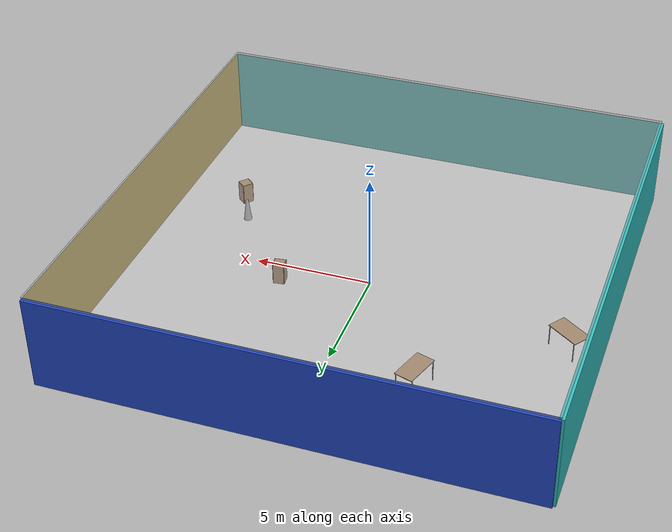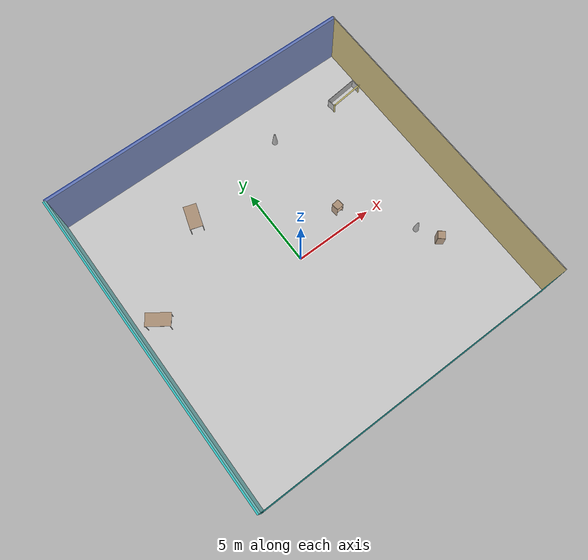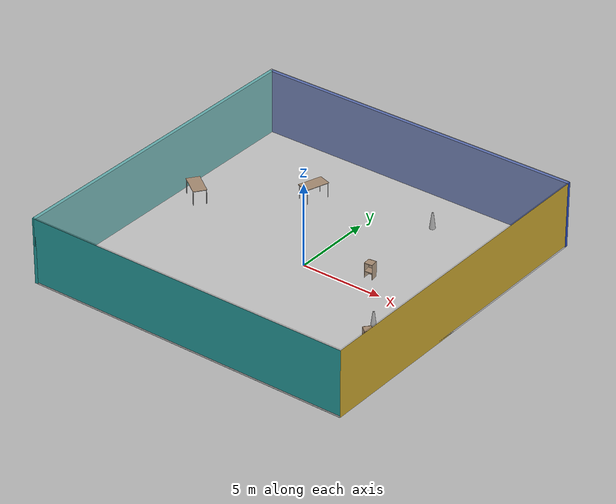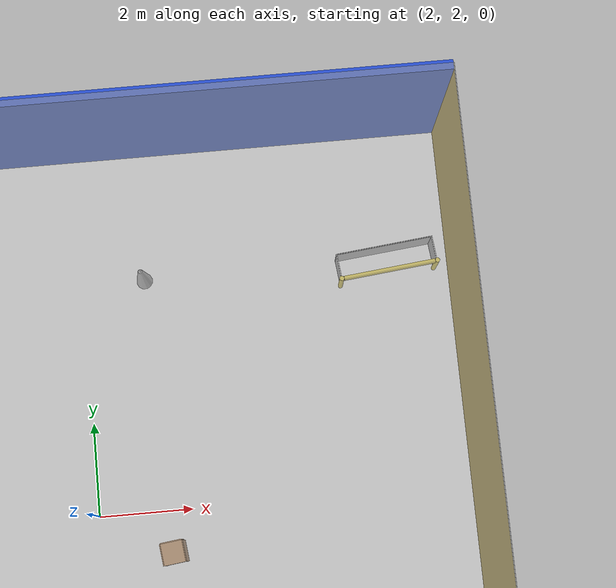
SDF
<sdf version="1.4">
 <world name="default">
  <physics type="ode">
   <max_step_size>0.001</max_step_size>
   <real_time_factor>1</real_time_factor>
   <real_time_update_rate>1000</real_time_update_rate>
   <gravity>0 0 -9.8</gravity>
  </physics>
  <scene><ambient>0.4 0.4 0.4 1</ambient><background>0.7 0.7 0.7 1</background><shadows>1</shadows></scene>
  <model name="Surrounding">
   <static>1</static>
   <link name="Ceiling">
    <collision name="Ceiling_Collision"><geometry><box><size>20 20 0.1</size></box></geometry></collision>
    <visual name="Ceiling_Visual">
     <geometry><box><size>20 20 0.1</size></box></geometry>
     <material>
      <script><uri>file://media/materials/scripts/gazebo.material</uri><name>Gazebo/GreyTransparent</name></script>
     </material>
    </visual>
    <pose>0 0 4.05 0 0 0</pose>
   </link>
   <link name="Wall_South">
    <collision name="Wall_South_Collision">
     <geometry><box><size>20 0 4</size></box></geometry>
     <pose>0 0 2 0 -0 0</pose>
    </collision>
    <visual name="Wall_South_Visual">
     <pose>0 0 2 0 -0 0</pose>
     <geometry><box><size>20 0 4</size></box></geometry>
     <material>
      <script>
       <uri>file://media/materials/scripts/gazebo.material</uri>
       <name>Gazebo/TurquoiseGlowOutline</name>
      </script>
     </material>
    </visual>
    <velocity_decay><linear>0</linear><angular>0</angular></velocity_decay>
    <pose>0 -10 0 0 -0 0</pose>
   </link>
   <link name="Wall_East">
    <collision name="Wall_21_Collision">
     <geometry><box><size>20 0 4</size></box></geometry>
     <pose>0 0 2 0 -0 0</pose>
    </collision>
    <visual name="Wall_21_Visual">
     <pose>0 0 2 0 -0 0</pose>
     <geometry><box><size>20 0 4</size></box></geometry>
     <material>
      <script><uri>file://media/materials/scripts/gazebo.material</uri><name>Gazebo/Gold</name></script>
     </material>
    </visual>
    <velocity_decay><linear>0</linear><angular>0</angular></velocity_decay>
    <pose>10 0 0 0 -0 1.5708</pose>
   </link>
   <link name="Wall_North">
    <collision name="Wall_22_Collision">
     <geometry><box><size>20 0.2 4</size></box></geometry>
     <pose>0 0 2 0 -0 0</pose>
    </collision>
    <visual name="Wall_22_Visual">
     <pose>0 0 2 0 -0 0</pose>
     <geometry><box><size>20 0.2 4</size></box></geometry>
     <material>
      <script><uri>file://media/materials/scripts/gazebo.material</uri><name>Gazebo/BlueGlow</name></script>
     </material>
    </visual>
    <velocity_decay><linear>0</linear><angular>0</angular></velocity_decay>
    <pose>0 10 0 0 -0 0</pose>
   </link>
   <link name="Wall_West">
    <collision name="Wall_23_Collision">
     <geometry><box><size>20 0.2 4</size></box></geometry>
     <pose>0 0 2 0 -0 0</pose>
    </collision>
    <visual name="Wall_23_Visual">
     <pose>0 0 2 0 -0 0</pose>
     <geometry><box><size>20 0.2 4</size></box></geometry>
     <material>
      <script><uri>file://media/materials/scripts/gazebo.material</uri><name>Gazebo/Turquoise</name></script>
     </material>
    </visual>
    <velocity_decay><linear>0</linear><angular>0</angular></velocity_decay>
    <pose>-10 0 0 0 0 -1.5708</pose>
   </link>
   <link name="Ground_link">
    <collision name="collision">
     <pose>0 0 .05 0 -0 0</pose>
     <geometry><box><size>20 20 0.1</size></box></geometry>
    </collision>
    <visual name="visual">
     <pose>0 0 .05 0 -0 0</pose>
     <geometry><box><size>20 20 0.1</size></box></geometry>
     <material>
      <script><uri>file://media/materials/scripts/gazebo.material</uri><name>Gazebo/White</name></script>
     </material>
    </visual>
   </link>
   <static>1</static>
  </model>
  <spherical_coordinates>
   <surface_model>EARTH_WGS84</surface_model>
   <latitude_deg>0</latitude_deg>
   <longitude_deg>0</longitude_deg>
   <elevation>0</elevation>
   <heading_deg>0</heading_deg>
  </spherical_coordinates>
  <light name="lightball_0" type="diffuse">
   <diffuse>0.8 0.8 0.8 1</diffuse>
   <specular>0.2 0.2 0.2 1</specular>
   <attenuation>
    <range>100</range>
    <constant>0.7</constant>
    <linear>0.01</linear>
    <quadratic>0.001</quadratic>
   </attenuation>
   <direction>-0.5 0.1 -0.9</direction>
   <pose>1.25530496725 -2.75509351555 0.708818237277 0 0 0</pose>
  </light>
  <light name="lightball_1" type="diffuse">
   <diffuse>0.8 0.8 0.8 1</diffuse>
   <specular>0.2 0.2 0.2 1</specular>
   <attenuation>
    <range>100</range>
    <constant>0.7</constant>
    <linear>0.01</linear>
    <quadratic>0.001</quadratic>
   </attenuation>
   <direction>-0.5 0.1 -0.9</direction>
   <pose>3.04227297356 2.8008380953 2.23668799889 0 0 0</pose>
  </light>
  <light name="lightball_2" type="diffuse">
   <diffuse>0.8 0.8 0.8 1</diffuse>
   <specular>0.2 0.2 0.2 1</specular>
   <attenuation>
    <range>100</range>
    <constant>0.7</constant>
    <linear>0.01</linear>
    <quadratic>0.001</quadratic>
   </attenuation>
   <direction>-0.5 0.1 -0.9</direction>
   <pose>2.37628475764 2.19714027874 2.12235755466 0 0 0</pose>
  </light>
  <light name="lightball_3" type="diffuse">
   <diffuse>0.8 0.8 0.8 1</diffuse>
   <specular>0.2 0.2 0.2 1</specular>
   <attenuation>
    <range>100</range>
    <constant>0.7</constant>
    <linear>0.01</linear>
    <quadratic>0.001</quadratic>
   </attenuation>
   <direction>-0.5 0.1 -0.9</direction>
   <pose>-7.39266547396 0.498391105823 1.97719591928 0 0 0</pose>
  </light>
  <include><uri>model://table</uri><pose>-8.69438296561 1.67665290134 0 0 0 2.5234262444</pose></include>
  <include><uri>model://table</uri><pose>-3.66089564364 5.63265076736 0 0 0 1.2613865516</pose></include>
  <include><uri>model://cabinet</uri><pose>3.57646462569 1.10271775403 0 0 0 1.69698118439</pose></include>
  <include>
   <uri>model://construction_cone</uri>
   <pose>3.31910774702 7.04926064693 0 0 0 2.33696717021</pose>
  </include>
  <include><uri>model://cabinet</uri><pose>7.23475816257 -4.02355091337 0 0 0 2.43160927663</pose></include>
  <include>
   <uri>model://construction_cone</uri>
   <pose>6.58778346603 -2.66031912638 0 0 0 1.7273928351</pose>
  </include>
  <include>
   <uri>model://robocup_3Dsim_goal</uri>
   <pose>8.65254549733 6.67516420982 0 0 0 1.67751331696</pose>
  </include>
 </world>
</sdf>

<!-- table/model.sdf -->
<sdf version="1.5">
  <model name="table">
    <static>true</static>
    <link name="link">
      <collision name="surface">
        <pose>0 0 1.0 0 0 0</pose>
        <geometry>
          <box>
            <size>1.5 0.8 0.03</size>
          </box>
        </geometry>
        <surface>
          <friction>
            <ode>
              <mu>0.6</mu>
              <mu2>0.6</mu2>
            </ode>
          </friction>
        </surface>
      </collision>
      <visual name="visual1">
        <pose>0 0 1.0 0 0 0</pose>
        <geometry>
          <box>
            <size>1.5 0.8 0.03</size>
          </box>
        </geometry>
        <material>
          <script>
            <uri>model://media/materials/scripts/gazebo.material</uri>
            <name>Gazebo/Wood</name>
          </script>
        </material>
      </visual>
      <collision name="front_left_leg">
        <pose>0.68 0.38 0.5 0 0 0</pose>
        <geometry>
          <cylinder>
            <radius>0.02</radius>
            <length>1.0</length>
          </cylinder>
        </geometry>
      </collision>
      <visual name="front_left_leg">
        <pose>0.68 0.38 0.5 0 0 0</pose>
        <geometry>
          <cylinder>
            <radius>0.02</radius>
            <length>1.0</length>
          </cylinder>
        </geometry>
        <material>
          <script>
            <uri>model://media/materials/scripts/gazebo.material</uri>
            <name>Gazebo/Grey</name>
          </script>
        </material>
      </visual>
      <collision name="front_right_leg">
        <pose>0.68 -0.38 0.5 0 0 0</pose>
        <geometry>
          <cylinder>
            <radius>0.02</radius>
            <length>1.0</length>
          </cylinder>
        </geometry>
      </collision>
      <visual name="front_right_leg">
        <pose>0.68 -0.38 0.5 0 0 0</pose>
        <geometry>
          <cylinder>
            <radius>0.02</radius>
            <length>1.0</length>
          </cylinder>
        </geometry>
        <material>
          <script>
            <uri>model://media/materials/scripts/gazebo.material</uri>
            <name>Gazebo/Grey</name>
          </script>
        </material>
      </visual>
      <collision name="back_right_leg">
        <pose>-0.68 -0.38 0.5 0 0 0</pose>
        <geometry>
          <cylinder>
            <radius>0.02</radius>
            <length>1.0</length>
          </cylinder>
        </geometry>
      </collision>
      <visual name="back_right_leg">
        <pose>-0.68 -0.38 0.5 0 0 0</pose>
        <geometry>
          <cylinder>
            <radius>0.02</radius>
            <length>1.0</length>
          </cylinder>
        </geometry>
        <material>
          <script>
            <uri>model://media/materials/scripts/gazebo.material</uri>
            <name>Gazebo/Grey</name>
          </script>
        </material>
      </visual>
      <collision name="back_left_leg">
        <pose>-0.68 0.38 0.5 0 0 0</pose>
        <geometry>
          <cylinder>
            <radius>0.02</radius>
            <length>1.0</length>
          </cylinder>
        </geometry>
      </collision>
      <visual name="back_left_leg">
        <pose>-0.68 0.38 0.5 0 0 0</pose>
        <geometry>
          <cylinder>
            <radius>0.02</radius>
            <length>1.0</length>
          </cylinder>
        </geometry>
        <material>
          <script>
            <uri>model://media/materials/scripts/gazebo.material</uri>
            <name>Gazebo/Grey</name>
          </script>
        </material>
      </visual>
    </link>
  </model>
</sdf>

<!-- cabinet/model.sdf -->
<sdf version="1.5">
  <model name="cabinet">
    <static>true</static>
    <link name="cabinet_bottom_plate">
      <inertial>
        <pose>0 0 -1 0 0 0</pose>
        <inertia>
          <ixx>2.050000</ixx>
          <ixy>0</ixy>
          <ixz>0</ixz>
          <iyy>2.050000</iyy>
          <iyz>0</iyz>
          <izz>2.050000</izz>
        </inertia>
        <mass>25.000000</mass>
      </inertial>
      <collision name="cabinet_bottom_plate_geom">
        <pose>0 0 0.010000 0 0 0</pose>
        <geometry>
          <box>
            <size>0.450000 0.450000 0.020000</size>
          </box>
        </geometry>
      </collision>
      <visual name="cabinet_bottom_plate_geom_visual">
        <pose>0 0 0.010000 0 0 0</pose>
        <geometry>
          <box>
            <size>0.450000 0.450000 0.020000</size>
          </box>
        </geometry>
        <material>
          <script>
            <uri>model://media/materials/scripts/gazebo.material</uri>
            <name>Gazebo/Wood</name>
          </script>
        </material>
      </visual>
      <collision name="cabinet_bottom_plate_geom_cabinet_back_plate">
        <pose>0.235000 0 0.510000 0 0 0</pose>
        <geometry>
          <box>
            <size>0.020000 0.450000 1.020000</size>
          </box>
        </geometry>
      </collision>
      <visual name="cabinet_bottom_plate_geom_cabinet_back_plate_visual">
        <pose>0.235000 0 0.510000 0 0 0</pose>
        <geometry>
          <box>
            <size>0.020000 0.450000 1.020000</size>
          </box>
        </geometry>
        <material>
          <script>
            <uri>model://media/materials/scripts/gazebo.material</uri>
            <name>Gazebo/Wood</name>
          </script>
        </material>
      </visual>
      <collision name="cabinet_bottom_plate_geom_cabinet_left_plate">
        <pose>0 0.235000 0.510000 0 0 0</pose>
        <geometry>
          <box>
            <size>0.450000 0.020000 1.020000</size>
          </box>
        </geometry>
      </collision>
      <visual name="cabinet_bottom_plate_geom_cabinet_left_plate_visual">
        <pose>0 0.235000 0.510000 0 0 0</pose>
        <geometry>
          <box>
            <size>0.450000 0.020000 1.020000</size>
          </box>
        </geometry>
        <material>
          <script>
            <uri>model://media/materials/scripts/gazebo.material</uri>
            <name>Gazebo/Wood</name>
          </script>
        </material>
      </visual>
      <collision name="cabinet_bottom_plate_geom_cabinet_middle_plate">
        <pose>0 0 0.510000 0 0 0</pose>
        <geometry>
          <box>
            <size>0.450000 0.450000 0.020000</size>
          </box>
        </geometry>
      </collision>
      <visual name="cabinet_bottom_plate_geom_cabinet_middle_plate_visual">
        <pose>0 0 0.510000 0 0 0</pose>
        <geometry>
          <box>
            <size>0.450000 0.450000 0.020000</size>
          </box>
        </geometry>
        <material>
          <script>
            <uri>model://media/materials/scripts/gazebo.material</uri>
            <name>Gazebo/Wood</name>
          </script>
        </material>
      </visual>
      <collision name="cabinet_bottom_plate_geom_cabinet_right_plate">
        <pose>0 -0.235000 0.510000 0 0 0</pose>
        <geometry>
          <box>
            <size>0.450000 0.020000 1.020000</size>
          </box>
        </geometry>
      </collision>
      <visual name="cabinet_bottom_plate_geom_cabinet_right_plate_visual">
        <pose>0 -0.235000 0.510000 0 0 0</pose>
        <geometry>
          <box>
            <size>0.450000 0.020000 1.020000</size>
          </box>
        </geometry>
        <material>
          <script>
            <uri>model://media/materials/scripts/gazebo.material</uri>
            <name>Gazebo/Wood</name>
          </script>
        </material>
      </visual>
      <collision name="cabinet_bottom_plate_geom_cabinet_top_plate">
        <pose>0 0 1.010000 0 0 0</pose>
        <geometry>
          <box>
            <size>0.450000 0.450000 0.020000</size>
          </box>
        </geometry>
      </collision>
      <visual name="cabinet_bottom_plate_geom_cabinet_top_plate_visual">
        <pose>0 0 1.010000 0 0 0</pose>
        <geometry>
          <box>
            <size>0.450000 0.450000 0.020000</size>
          </box>
        </geometry>
        <material>
          <script>
            <uri>model://media/materials/scripts/gazebo.material</uri>
            <name>Gazebo/Wood</name>
          </script>
        </material>
      </visual>
    </link>
  </model>
</sdf>

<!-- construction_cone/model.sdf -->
<sdf version="1.5">
  <model name="Construction Cone">
    <link name="link">
      <collision name="collision">
        <geometry>
          <mesh>
            <scale>10 10 10</scale>
            <uri>file://isr-testbed/construction_cone/meshes/construction_cone.dae</uri>
          </mesh>
        </geometry>
      </collision>
      <visual name="visual">
        <geometry>
          <mesh>
            <scale>10 10 10</scale>
            <uri>file://isr-testbed/construction_cone/meshes/construction_cone.dae</uri>
          </mesh>
        </geometry>
      </visual>
    </link>
  </model>
</sdf>

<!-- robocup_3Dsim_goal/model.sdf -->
<sdf version="1.5">
  <model name="robocup_3d_goal">
    <static>true</static>
    <link name="left_post">
      <pose>0 1.05 0.45 0 0 0</pose>
      <collision name="collision">
        <geometry>
          <cylinder>
            <radius>0.05</radius>
            <length>0.9</length>
          </cylinder>
        </geometry>
      </collision>
      <visual name="visual">
        <geometry>
          <cylinder>
            <radius>0.05</radius>
            <length>0.9</length>
          </cylinder>
        </geometry>
        <material>
          <script>
            <uri>file://media/materials/scripts/gazebo.material</uri>
            <name>Gazebo/ZincYellow</name>
          </script>
        </material>
      </visual>
    </link>
    <link name="left_support_horiz_lower">
      <pose>0.30 1.05 0.01 0 0 0</pose>
      <collision name="collision">
        <geometry>
          <box>
            <size>0.50 0.02 0.02</size>
          </box>
        </geometry>
      </collision>
      <visual name="visual">
        <geometry>
          <box>
            <size>0.50 0.02 0.02</size>
          </box>
        </geometry>
        <material>
          <script>
            <uri>file://media/materials/scripts/gazebo.material</uri>
            <name>Gazebo/White</name>
          </script>
        </material>
      </visual>
    </link>
    <link name="left_support_horiz_upper">
      <pose>0.30 1.05 0.79 0 0 0</pose>
      <collision name="collision">
        <geometry>
          <box>
            <size>0.50 0.02 0.02</size>
          </box>
        </geometry>
      </collision>
      <visual name="visual">
        <geometry>
          <box>
            <size>0.50 0.02 0.02</size>
          </box>
        </geometry>
        <material>
          <script>
            <uri>file://media/materials/scripts/gazebo.material</uri>
            <name>Gazebo/White</name>
          </script>
        </material>
      </visual>
    </link>
    <link name="left_support_vertical">
      <pose>0.56 1.05 0.4 0 1.5708 0</pose>
      <collision name="collision">
        <geometry>
          <box>
            <size>0.80 0.02 0.02</size>
          </box>
        </geometry>
      </collision>
      <visual name="visual">
        <geometry>
          <box>
            <size>0.80 0.02 0.02</size>
          </box>
        </geometry>
        <material>
          <script>
            <uri>file://media/materials/scripts/gazebo.material</uri>
            <name>Gazebo/White</name>
          </script>
        </material>
      </visual>
    </link>
    <link name="right_support_horiz_lower">
      <pose>0.30 -1.05 0.01 0 0 0</pose>
      <collision name="collision">
        <geometry>
          <box>
            <size>0.50 0.02 0.02</size>
          </box>
        </geometry>
      </collision>
      <visual name="visual">
        <geometry>
          <box>
            <size>0.50 0.02 0.02</size>
          </box>
        </geometry>
        <material>
          <script>
            <uri>file://media/materials/scripts/gazebo.material</uri>
            <name>Gazebo/White</name>
          </script>
        </material>
      </visual>
    </link>
    <link name="right_support_horiz_upper">
      <pose>0.30 -1.05 0.79 0 0 0</pose>
      <collision name="collision">
        <geometry>
          <box>
            <size>0.50 0.02 0.02</size>
          </box>
        </geometry>
      </collision>
      <visual name="visual">
        <geometry>
          <box>
            <size>0.50 0.02 0.02</size>
          </box>
        </geometry>
        <material>
          <script>
            <uri>file://media/materials/scripts/gazebo.material</uri>
            <name>Gazebo/White</name>
          </script>
        </material>
      </visual>
    </link>
    <link name="right_support_vertical">
      <pose>0.56 -1.05 0.4 0 1.5708 0</pose>
      <collision name="collision">
        <geometry>
          <box>
            <size>0.80 0.02 0.02</size>
          </box>
        </geometry>
      </collision>
      <visual name="visual">
        <geometry>
          <box>
            <size>0.80 0.02 0.02</size>
          </box>
        </geometry>
        <material>
          <script>
            <uri>file://media/materials/scripts/gazebo.material</uri>
            <name>Gazebo/White</name>
          </script>
        </material>
      </visual>
    </link>
    <link name="center_support_horiz_lower">
      <pose>0.56 0 0.01 0 1.5708 0</pose>
      <collision name="collision">
        <geometry>
          <box>
            <size>0.02 2.08 0.02</size>
          </box>
        </geometry>
      </collision>
      <visual name="visual">
        <geometry>
          <box>
            <size>0.02 2.08 0.02</size>
          </box>
        </geometry>
        <material>
          <script>
            <uri>file://media/materials/scripts/gazebo.material</uri>
            <name>Gazebo/White</name>
          </script>
        </material>
      </visual>
    </link>
    <link name="center_support_horiz_upper">
      <pose>0.56 0 0.79 0 1.5708 0</pose>
      <collision name="collision">
        <geometry>
          <box>
            <size>0.02 2.08 0.02</size>
          </box>
        </geometry>
      </collision>
      <visual name="visual">
        <geometry>
          <box>
            <size>0.02 2.08 0.02</size>
          </box>
        </geometry>
        <material>
          <script>
            <uri>file://media/materials/scripts/gazebo.material</uri>
            <name>Gazebo/White</name>
          </script>
        </material>
      </visual>
    </link>
    <link name="right_post">
      <pose>0 -1.05 0.45 0 0 0</pose>
      <collision name="collision">
        <geometry>
          <cylinder>
            <radius>0.05</radius>
            <length>0.9</length>
          </cylinder>
        </geometry>
      </collision>
      <visual name="visual">
        <geometry>
          <cylinder>
            <radius>0.05</radius>
            <length>0.9</length>
          </cylinder>
        </geometry>
        <material>
          <script>
            <uri>file://media/materials/scripts/gazebo.material</uri>
            <name>Gazebo/ZincYellow</name>
          </script>
        </material>
      </visual>
    </link>
    <link name="crossbar">
      <pose>0 0 0.85 1.57 1.57 0</pose>
      <collision name="collision">
        <geometry>
          <cylinder>
            <radius>0.05</radius>
            <length>2.0</length>
          </cylinder>
        </geometry>
      </collision>
      <visual name="visual">
        <geometry>
          <cylinder>
            <radius>0.05</radius>
            <length>2.0</length>
          </cylinder>
        </geometry>
        <material>
          <script>
            <uri>file://media/materials/scripts/gazebo.material</uri>
            <name>Gazebo/ZincYellow</name>
          </script>
        </material>
      </visual>
    </link>
    <link name="center_net">
      <pose>0.56 0 0.40 0 0 0</pose>
      <collision name="collision">
        <geometry>
          <box>
            <size>0.01 2.1 0.80</size>
          </box>
        </geometry>
      </collision>
      <visual name="visual">
        <geometry>
          <box>
            <size>0.01 2.1 0.80</size>
          </box>
        </geometry>
        <material>
          <script>
            <uri>model://../model_source/models/robocup09_spl_field/materials/scripts/</uri>
            <uri>model://../model_source/models/robocup09_spl_field/materials/textures/</uri>
            <name>RoboCup/Net</name>
          </script>
        </material>
      </visual>
    </link>
    <link name="left_net">
      <pose>0.30 1.05 0.40 0 0 0</pose>
      <collision name="collision">
        <geometry>
          <box>
            <size>0.50 0.01 0.76</size>
          </box>
        </geometry>
      </collision>
      <visual name="visual">
        <geometry>
          <box>
            <size>0.50 0.01 0.76</size>
          </box>
        </geometry>
        <material>
          <script>
            <uri>model://../model_source/models/robocup09_spl_field/materials/scripts/</uri>
            <uri>model://../model_source/models/robocup09_spl_field/materials/textures/</uri>
            <name>RoboCup/Net</name>
          </script>
        </material>
      </visual>
    </link>
    <link name="right_net">
      <pose>0.30 -1.05 0.40 0 0 0</pose>
      <collision name="collision">
        <geometry>
          <box>
            <size>0.50 0.01 0.76</size>
          </box>
        </geometry>
      </collision>
      <visual name="visual">
        <geometry>
          <box>
            <size>0.50 0.01 0.76</size>
          </box>
        </geometry>
        <material>
          <script>
            <uri>model://../model_source/models/robocup09_spl_field/materials/scripts/</uri>
            <uri>model://../model_source/models/robocup09_spl_field/materials/textures/</uri>
            <name>RoboCup/Net</name>
          </script>
        </material>
      </visual>
    </link>
  </model>
</sdf>
